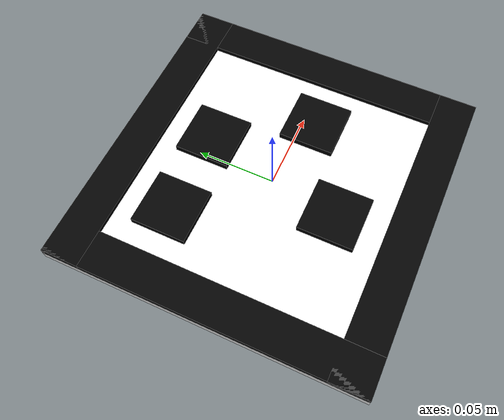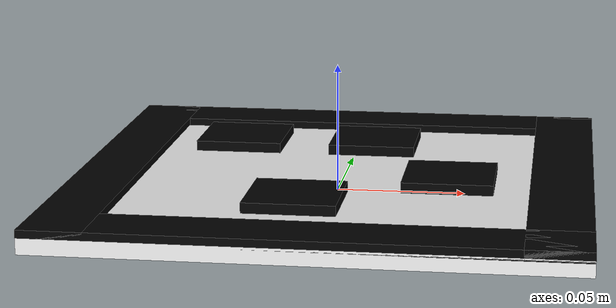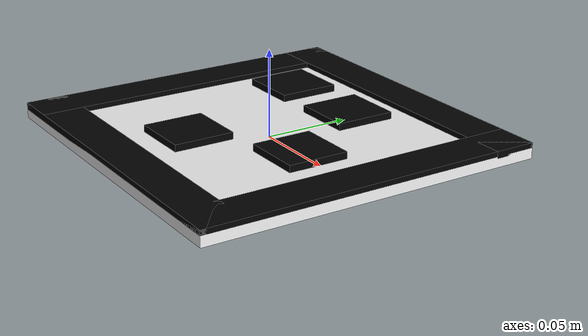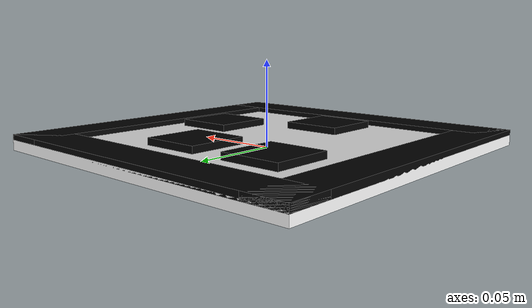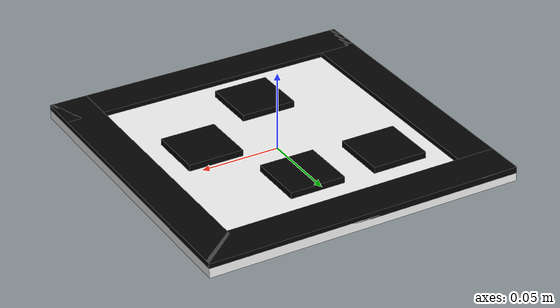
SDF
<?xml version="1.0"?>
<sdf version="1.6">
  <model name="datamatrix_marker">
    <static>true</static>
    <link name="link">
      <!-- 200 mm floor marker: white substrate plus DataMatrix-style L finder
           border and alternating timing border. It is intentionally not QR. -->
      <visual name="white_substrate"><pose>0 0 0.003 0 0 0</pose><geometry><box><size>0.20 0.20 0.006</size></box></geometry><material><ambient>0.95 0.95 0.95 1</ambient><diffuse>0.95 0.95 0.95 1</diffuse></material></visual>
      <visual name="black_l_left"><pose>-0.088 0 0.007 0 0 0</pose><geometry><box><size>0.024 0.20 0.004</size></box></geometry><material><ambient>0.01 0.01 0.01 1</ambient><diffuse>0.01 0.01 0.01 1</diffuse></material></visual>
      <visual name="black_l_bottom"><pose>0 -0.088 0.007 0 0 0</pose><geometry><box><size>0.20 0.024 0.004</size></box></geometry><material><ambient>0.01 0.01 0.01 1</ambient><diffuse>0.01 0.01 0.01 1</diffuse></material></visual>
      <visual name="timing_top"><pose>0 0.088 0.007 0 0 0</pose><geometry><box><size>0.20 0.024 0.004</size></box></geometry><material><ambient>0.01 0.01 0.01 1</ambient><diffuse>0.01 0.01 0.01 1</diffuse></material></visual>
      <visual name="timing_right"><pose>0.088 0 0.007 0 0 0</pose><geometry><box><size>0.024 0.20 0.004</size></box></geometry><material><ambient>0.01 0.01 0.01 1</ambient><diffuse>0.01 0.01 0.01 1</diffuse></material></visual>
      <visual name="cell_a"><pose>-0.045 0.045 0.009 0 0 0</pose><geometry><box><size>0.035 0.035 0.004</size></box></geometry><material><ambient>0.01 0.01 0.01 1</ambient><diffuse>0.01 0.01 0.01 1</diffuse></material></visual>
      <visual name="cell_b"><pose>0.010 0.045 0.009 0 0 0</pose><geometry><box><size>0.035 0.035 0.004</size></box></geometry><material><ambient>0.01 0.01 0.01 1</ambient><diffuse>0.01 0.01 0.01 1</diffuse></material></visual>
      <visual name="cell_c"><pose>0.045 -0.010 0.009 0 0 0</pose><geometry><box><size>0.035 0.035 0.004</size></box></geometry><material><ambient>0.01 0.01 0.01 1</ambient><diffuse>0.01 0.01 0.01 1</diffuse></material></visual>
      <visual name="cell_d"><pose>-0.010 -0.045 0.009 0 0 0</pose><geometry><box><size>0.035 0.035 0.004</size></box></geometry><material><ambient>0.01 0.01 0.01 1</ambient><diffuse>0.01 0.01 0.01 1</diffuse></material></visual>
    </link>
  </model>
</sdf>
